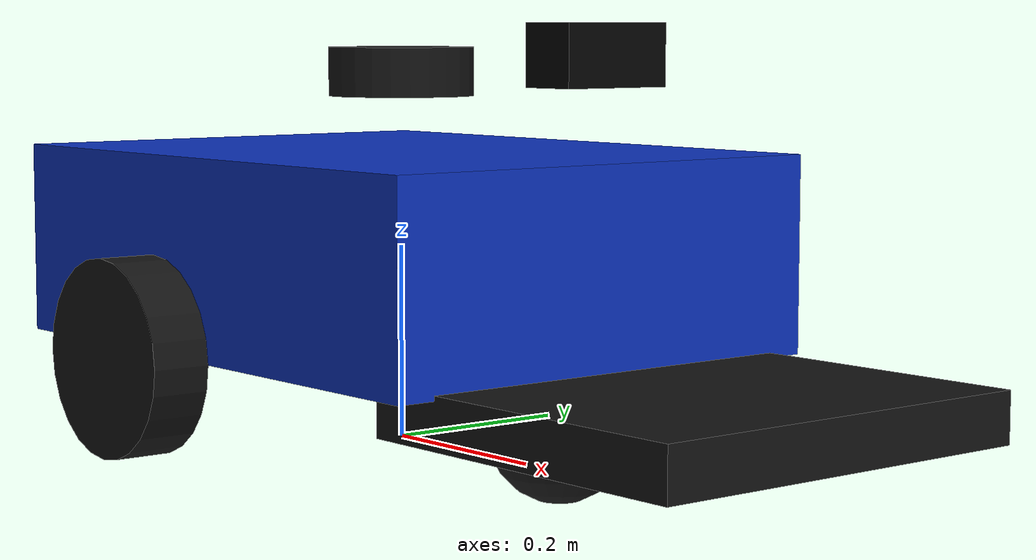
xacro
<?xml version="1.0"?>
<robot xmlns:xacro="http://www.ros.org/wiki/xacro" name="warehouse_robot">

  <xacro:property name="base_length" value="0.65"/>
  <xacro:property name="base_width" value="0.50"/>
  <xacro:property name="base_height" value="0.20"/>
  <xacro:property name="wheel_radius" value="0.10"/>
  <xacro:property name="wheel_width" value="0.06"/>

  <material name="robot_blue"><color rgba="0.05 0.20 0.75 1"/></material>
  <material name="dark"><color rgba="0.08 0.08 0.08 1"/></material>
  <material name="camera_black"><color rgba="0.02 0.02 0.02 1"/></material>

  <link name="base_footprint"/>

  <joint name="base_joint" type="fixed">
    <parent link="base_footprint"/>
    <child link="base_link"/>
    <origin xyz="0 0 0.20"/>
  </joint>

  <link name="base_link">
    <visual><geometry><box size="${base_length} ${base_width} ${base_height}"/></geometry><material name="robot_blue"/></visual>
    <collision><geometry><box size="${base_length} ${base_width} ${base_height}"/></geometry></collision>
    <inertial>
      <mass value="18"/>
      <inertia ixx="1.1" ixy="0" ixz="0" iyy="1.1" iyz="0" izz="1.1"/>
    </inertial>
  </link>

  <xacro:macro name="wheel" params="name y">
    <link name="${name}">
      <visual><origin rpy="1.57079632679 0 0"/><geometry><cylinder radius="${wheel_radius}" length="${wheel_width}"/></geometry><material name="dark"/></visual>
      <collision><origin rpy="1.57079632679 0 0"/><geometry><cylinder radius="${wheel_radius}" length="${wheel_width}"/></geometry></collision>
      <inertial><mass value="1.2"/><inertia ixx="0.02" ixy="0" ixz="0" iyy="0.02" iyz="0" izz="0.02"/></inertial>
    </link>
    <joint name="${name}_joint" type="continuous">
      <parent link="base_link"/>
      <child link="${name}"/>
      <origin xyz="-0.08 ${y} -0.10"/>
      <axis xyz="0 1 0"/>
    </joint>
  </xacro:macro>

  <xacro:wheel name="left_wheel" y="0.28"/>
  <xacro:wheel name="right_wheel" y="-0.28"/>

  <link name="caster_wheel">
    <visual><geometry><sphere radius="0.07"/></geometry><material name="dark"/></visual>
    <collision><geometry><sphere radius="0.07"/></geometry></collision>
    <inertial><mass value="0.3"/><inertia ixx="0.001" ixy="0" ixz="0" iyy="0.001" iyz="0" izz="0.001"/></inertial>
  </link>
  <joint name="caster_joint" type="fixed">
    <parent link="base_link"/><child link="caster_wheel"/><origin xyz="0.25 0 -0.16"/>
  </joint>

  <link name="pickup_tray">
    <visual><origin xyz="0 0 0"/><geometry><box size="0.38 0.42 0.05"/></geometry><material name="dark"/></visual>
    <collision><origin xyz="0 0 0"/><geometry><box size="0.38 0.42 0.05"/></geometry></collision>
  </link>
  <joint name="pickup_tray_joint" type="fixed">
    <parent link="base_link"/><child link="pickup_tray"/>
    <origin xyz="0.43 0 -0.12"/>
  </joint>

  <!-- LiDAR -->
  <link name="lidar_link">
    <visual><geometry><cylinder radius="0.075" length="0.05"/></geometry><material name="dark"/></visual>
    <collision><geometry><cylinder radius="0.075" length="0.05"/></geometry></collision>
  </link>
  <joint name="lidar_joint" type="fixed">
    <parent link="base_link"/><child link="lidar_link"/><origin xyz="0 0 0.18"/>
  </joint>

  <!-- RGB camera -->
  <link name="camera_link">
    <visual><geometry><box size="0.06 0.12 0.06"/></geometry><material name="camera_black"/></visual>
    <collision><geometry><box size="0.06 0.12 0.06"/></geometry></collision>
  </link>
  <joint name="camera_joint" type="fixed">
    <parent link="base_link"/><child link="camera_link"/>
    <origin xyz="0.30 0 0.20" rpy="0 0 0"/>
  </joint>

  <link name="camera_link_optical"/>
  <joint name="camera_optical_joint" type="fixed">
    <parent link="camera_link"/><child link="camera_link_optical"/>
    <origin xyz="0 0 0" rpy="${-pi/2} 0 ${-pi/2}"/>
  </joint>

  <!-- IMU -->
  <link name="imu_link"/>
  <joint name="imu_joint" type="fixed">
    <parent link="base_link"/><child link="imu_link"/><origin xyz="0 0 0.12"/>
  </joint>

  <!-- Gazebo differential drive -->
  <gazebo reference="left_wheel"><mu1>1.0</mu1><mu2>1.0</mu2></gazebo>
  <gazebo reference="right_wheel"><mu1>1.0</mu1><mu2>1.0</mu2></gazebo>

  <gazebo>
    <plugin filename="libgz-sim-diff-drive-system.so"
            name="gz::sim::systems::DiffDrive">
      <left_joint>left_wheel_joint</left_joint>
      <right_joint>right_wheel_joint</right_joint>
      <wheel_separation>0.56</wheel_separation>
      <wheel_radius>0.10</wheel_radius>
      <topic>/cmd_vel</topic>
      <odom_topic>/odom</odom_topic>
      <frame_id>odom</frame_id>
      <child_frame_id>base_footprint</child_frame_id>
    </plugin>
  </gazebo>

  <gazebo>
    <plugin filename="libgz-sim-joint-state-publisher-system.so"
            name="gz::sim::systems::JointStatePublisher">
      <joint_name>left_wheel_joint</joint_name>
      <joint_name>right_wheel_joint</joint_name>
    </plugin>
  </gazebo>

  <!-- LiDAR -->
  <gazebo reference="lidar_link">
    <sensor name="lidar" type="gpu_lidar">
      <always_on>true</always_on>
      <update_rate>10</update_rate>
      <visualize>true</visualize>
      <topic>/scan</topic>
      <frame_id>lidar_link</frame_id>
      <lidar>
        <scan>
          <horizontal>
            <samples>720</samples>
            <resolution>1</resolution>
            <min_angle>-3.14159</min_angle>
            <max_angle>3.14159</max_angle>
          </horizontal>
        </scan>
        <range><min>0.12</min><max>12.0</max><resolution>0.01</resolution></range>
      </lidar>
    </sensor>
  </gazebo>

  <!-- RGB camera for CV -->
  <gazebo reference="camera_link">
    <sensor name="warehouse_camera" type="camera">
      <always_on>true</always_on>
      <update_rate>20</update_rate>
      <visualize>true</visualize>
      <topic>/camera/image_raw</topic>
      <camera>
        <horizontal_fov>1.0472</horizontal_fov>
        <image><width>640</width><height>480</height><format>R8G8B8</format></image>
        <clip><near>0.05</near><far>20.0</far></clip>
        <noise><type>gaussian</type><mean>0.0</mean><stddev>0.005</stddev></noise>
      </camera>
    </sensor>
  </gazebo>

  <!-- IMU -->
  <gazebo reference="imu_link">
    <sensor name="imu_sensor" type="imu">
      <always_on>true</always_on>
      <update_rate>50</update_rate>
      <topic>/imu</topic>
    </sensor>
  </gazebo>

</robot>
